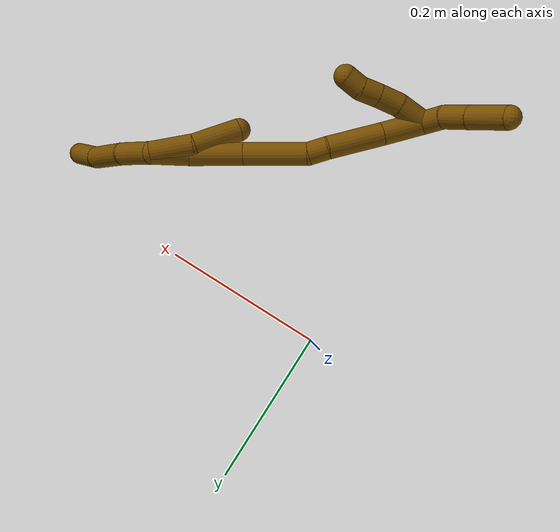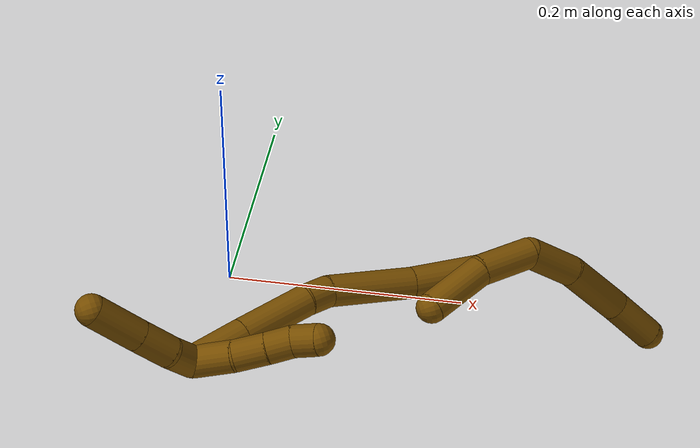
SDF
<sdf version="1.7">
 <world name="default">
  <model name="12">
   <static>0</static>
   <link name="12">
    <collision name="collision-cylinder-e_1_2_8">
     <pose>0.007595 0.014216 -0.015926 -2.41288 0.341819 -0.849938</pose>
     <geometry><cylinder><radius>0.0125</radius><length>0.045317</length></cylinder></geometry>
     <surface>
      <friction><ode><mu>1.16</mu><mu2>1.16</mu2><slip1>0</slip1><slip2>0</slip2></ode></friction>
      <contact><ode><kp>1e+06</kp><kd>1</kd><max_vel>0</max_vel><min_depth>0.001</min_depth></ode></contact>
     </surface>
    </collision>
    <visual name="visual-cylinder-e_1_2_8">
     <pose>0.007595 0.014216 -0.015926 -2.41288 0.341819 -0.849938</pose>
     <geometry><cylinder><radius>0.0125</radius><length>0.045317</length></cylinder></geometry>
     <material><ambient>0.466667 0.301961 0 1</ambient></material>
    </visual>
    <collision name="collision-cylinder-e_2_8_9">
     <pose>0.0277 0.051059 -0.048284 -2.19888 0.420626 -0.793279</pose>
     <geometry><cylinder><radius>0.0125</radius><length>0.06127</length></cylinder></geometry>
     <surface>
      <friction><ode><mu>1.16</mu><mu2>1.16</mu2><slip1>0</slip1><slip2>0</slip2></ode></friction>
      <contact><ode><kp>1e+06</kp><kd>1</kd><max_vel>0</max_vel><min_depth>0.001</min_depth></ode></contact>
     </surface>
    </collision>
    <visual name="visual-cylinder-e_2_8_9">
     <pose>0.0277 0.051059 -0.048284 -2.19888 0.420626 -0.793279</pose>
     <geometry><cylinder><radius>0.0125</radius><length>0.06127</length></cylinder></geometry>
     <material><ambient>0.466667 0.301961 0 1</ambient></material>
    </visual>
    <collision name="collision-cylinder-e_3_9_6">
     <pose>0.045563 0.09111 -0.076503 -2.1656 0.249251 -0.463524</pose>
     <geometry><cylinder><radius>0.0125</radius><length>0.043413</length></cylinder></geometry>
     <surface>
      <friction><ode><mu>1.16</mu><mu2>1.16</mu2><slip1>0</slip1><slip2>0</slip2></ode></friction>
      <contact><ode><kp>1e+06</kp><kd>1</kd><max_vel>0</max_vel><min_depth>0.001</min_depth></ode></contact>
     </surface>
    </collision>
    <visual name="visual-cylinder-e_3_9_6">
     <pose>0.045563 0.09111 -0.076503 -2.1656 0.249251 -0.463524</pose>
     <geometry><cylinder><radius>0.0125</radius><length>0.043413</length></cylinder></geometry>
     <material><ambient>0.466667 0.301961 0 1</ambient></material>
    </visual>
    <collision name="collision-cylinder-e_1_2_10">
     <pose>-0.007323 -0.001061 0.02263 0.046859 -0.312647 -0.007387</pose>
     <geometry><cylinder><radius>0.0125</radius><length>0.047618</length></cylinder></geometry>
     <surface>
      <friction><ode><mu>1.16</mu><mu2>1.16</mu2><slip1>0</slip1><slip2>0</slip2></ode></friction>
      <contact><ode><kp>1e+06</kp><kd>1</kd><max_vel>0</max_vel><min_depth>0.001</min_depth></ode></contact>
     </surface>
    </collision>
    <visual name="visual-cylinder-e_1_2_10">
     <pose>-0.007323 -0.001061 0.02263 0.046859 -0.312647 -0.007387</pose>
     <geometry><cylinder><radius>0.0125</radius><length>0.047618</length></cylinder></geometry>
     <material><ambient>0.466667 0.301961 0 1</ambient></material>
    </visual>
    <collision name="collision-cylinder-e_2_10_5">
     <pose>-0.023955 0.00364 0.069053 -0.237629 -0.363374 0.043855</pose>
     <geometry><cylinder><radius>0.0125</radius><length>0.052382</length></cylinder></geometry>
     <surface>
      <friction><ode><mu>1.16</mu><mu2>1.16</mu2><slip1>0</slip1><slip2>0</slip2></ode></friction>
      <contact><ode><kp>1e+06</kp><kd>1</kd><max_vel>0</max_vel><min_depth>0.001</min_depth></ode></contact>
     </surface>
    </collision>
    <visual name="visual-cylinder-e_2_10_5">
     <pose>-0.023955 0.00364 0.069053 -0.237629 -0.363374 0.043855</pose>
     <geometry><cylinder><radius>0.0125</radius><length>0.052382</length></cylinder></geometry>
     <material><ambient>0.466667 0.301961 0 1</ambient></material>
    </visual>
    <collision name="collision-cylinder-e_1_2_11">
     <pose>-0.001391 0.000227 0.020951 -0.010853 -0.066314 0.00036</pose>
     <geometry><cylinder><radius>0.0125</radius><length>0.041997</length></cylinder></geometry>
     <surface>
      <friction><ode><mu>1.16</mu><mu2>1.16</mu2><slip1>0</slip1><slip2>0</slip2></ode></friction>
      <contact><ode><kp>1e+06</kp><kd>1</kd><max_vel>0</max_vel><min_depth>0.001</min_depth></ode></contact>
     </surface>
    </collision>
    <visual name="visual-cylinder-e_1_2_11">
     <pose>-0.001391 0.000227 0.020951 -0.010853 -0.066314 0.00036</pose>
     <geometry><cylinder><radius>0.0125</radius><length>0.041997</length></cylinder></geometry>
     <material><ambient>0.466667 0.301961 0 1</ambient></material>
    </visual>
    <collision name="collision-cylinder-e_2_11_12">
     <pose>-0.008106 -0.004585 0.070917 0.171981 -0.178821 -0.015456</pose>
     <geometry><cylinder><radius>0.0125</radius><length>0.059854</length></cylinder></geometry>
     <surface>
      <friction><ode><mu>1.16</mu><mu2>1.16</mu2><slip1>0</slip1><slip2>0</slip2></ode></friction>
      <contact><ode><kp>1e+06</kp><kd>1</kd><max_vel>0</max_vel><min_depth>0.001</min_depth></ode></contact>
     </surface>
    </collision>
    <visual name="visual-cylinder-e_2_11_12">
     <pose>-0.008106 -0.004585 0.070917 0.171981 -0.178821 -0.015456</pose>
     <geometry><cylinder><radius>0.0125</radius><length>0.059854</length></cylinder></geometry>
     <material><ambient>0.466667 0.301961 0 1</ambient></material>
    </visual>
    <collision name="collision-cylinder-e_3_12_13">
     <pose>-0.020459 -0.018389 0.133246 0.257253 -0.201316 -0.026125</pose>
     <geometry><cylinder><radius>0.0125</radius><length>0.070315</length></cylinder></geometry>
     <surface>
      <friction><ode><mu>1.16</mu><mu2>1.16</mu2><slip1>0</slip1><slip2>0</slip2></ode></friction>
      <contact><ode><kp>1e+06</kp><kd>1</kd><max_vel>0</max_vel><min_depth>0.001</min_depth></ode></contact>
     </surface>
    </collision>
    <visual name="visual-cylinder-e_3_12_13">
     <pose>-0.020459 -0.018389 0.133246 0.257253 -0.201316 -0.026125</pose>
     <geometry><cylinder><radius>0.0125</radius><length>0.070315</length></cylinder></geometry>
     <material><ambient>0.466667 0.301961 0 1</ambient></material>
    </visual>
    <collision name="collision-cylinder-e_4_13_14">
     <pose>-0.032114 -0.027511 0.17625 0.036924 -0.445068 -0.008356</pose>
     <geometry><cylinder><radius>0.0125</radius><length>0.021487</length></cylinder></geometry>
     <surface>
      <friction><ode><mu>1.16</mu><mu2>1.16</mu2><slip1>0</slip1><slip2>0</slip2></ode></friction>
      <contact><ode><kp>1e+06</kp><kd>1</kd><max_vel>0</max_vel><min_depth>0.001</min_depth></ode></contact>
     </surface>
    </collision>
    <visual name="visual-cylinder-e_4_13_14">
     <pose>-0.032114 -0.027511 0.17625 0.036924 -0.445068 -0.008356</pose>
     <geometry><cylinder><radius>0.0125</radius><length>0.021487</length></cylinder></geometry>
     <material><ambient>0.466667 0.301961 0 1</ambient></material>
    </visual>
    <collision name="collision-cylinder-e_5_14_15">
     <pose>-0.046687 -0.025287 0.214183 -0.091194 -0.337331 0.015539</pose>
     <geometry><cylinder><radius>0.0125</radius><length>0.06011</length></cylinder></geometry>
     <surface>
      <friction><ode><mu>1.16</mu><mu2>1.16</mu2><slip1>0</slip1><slip2>0</slip2></ode></friction>
      <contact><ode><kp>1e+06</kp><kd>1</kd><max_vel>0</max_vel><min_depth>0.001</min_depth></ode></contact>
     </surface>
    </collision>
    <visual name="visual-cylinder-e_5_14_15">
     <pose>-0.046687 -0.025287 0.214183 -0.091194 -0.337331 0.015539</pose>
     <geometry><cylinder><radius>0.0125</radius><length>0.06011</length></cylinder></geometry>
     <material><ambient>0.466667 0.301961 0 1</ambient></material>
    </visual>
    <collision name="collision-cylinder-e_6_15_1">
     <pose>-0.064513 -0.020357 0.264034 -0.1082 -0.347759 0.019024</pose>
     <geometry><cylinder><radius>0.0125</radius><length>0.046239</length></cylinder></geometry>
     <surface>
      <friction><ode><mu>1.16</mu><mu2>1.16</mu2><slip1>0</slip1><slip2>0</slip2></ode></friction>
      <contact><ode><kp>1e+06</kp><kd>1</kd><max_vel>0</max_vel><min_depth>0.001</min_depth></ode></contact>
     </surface>
    </collision>
    <visual name="visual-cylinder-e_6_15_1">
     <pose>-0.064513 -0.020357 0.264034 -0.1082 -0.347759 0.019024</pose>
     <geometry><cylinder><radius>0.0125</radius><length>0.046239</length></cylinder></geometry>
     <material><ambient>0.466667 0.301961 0 1</ambient></material>
    </visual>
    <collision name="collision-cylinder-e_1_1_16">
     <pose>-0.080105 -0.01702 0.270617 -3.07585 -0.473398 2.87064</pose>
     <geometry><cylinder><radius>0.0125</radius><length>0.033837</length></cylinder></geometry>
     <surface>
      <friction><ode><mu>1.16</mu><mu2>1.16</mu2><slip1>0</slip1><slip2>0</slip2></ode></friction>
      <contact><ode><kp>1e+06</kp><kd>1</kd><max_vel>0</max_vel><min_depth>0.001</min_depth></ode></contact>
     </surface>
    </collision>
    <visual name="visual-cylinder-e_1_1_16">
     <pose>-0.080105 -0.01702 0.270617 -3.07585 -0.473398 2.87064</pose>
     <geometry><cylinder><radius>0.0125</radius><length>0.033837</length></cylinder></geometry>
     <material><ambient>0.466667 0.301961 0 1</ambient></material>
    </visual>
    <collision name="collision-cylinder-e_2_16_17">
     <pose>-0.091488 -0.015808 0.243314 -3.12345 -0.290391 3.01768</pose>
     <geometry><cylinder><radius>0.0125</radius><length>0.025634</length></cylinder></geometry>
     <surface>
      <friction><ode><mu>1.16</mu><mu2>1.16</mu2><slip1>0</slip1><slip2>0</slip2></ode></friction>
      <contact><ode><kp>1e+06</kp><kd>1</kd><max_vel>0</max_vel><min_depth>0.001</min_depth></ode></contact>
     </surface>
    </collision>
    <visual name="visual-cylinder-e_2_16_17">
     <pose>-0.091488 -0.015808 0.243314 -3.12345 -0.290391 3.01768</pose>
     <geometry><cylinder><radius>0.0125</radius><length>0.025634</length></cylinder></geometry>
     <material><ambient>0.466667 0.301961 0 1</ambient></material>
    </visual>
    <collision name="collision-cylinder-e_3_17_18">
     <pose>-0.097698 -0.015685 0.221103 3.13159 -0.25034 -3.06211</pose>
     <geometry><cylinder><radius>0.0125</radius><length>0.020506</length></cylinder></geometry>
     <surface>
      <friction><ode><mu>1.16</mu><mu2>1.16</mu2><slip1>0</slip1><slip2>0</slip2></ode></friction>
      <contact><ode><kp>1e+06</kp><kd>1</kd><max_vel>0</max_vel><min_depth>0.001</min_depth></ode></contact>
     </surface>
    </collision>
    <visual name="visual-cylinder-e_3_17_18">
     <pose>-0.097698 -0.015685 0.221103 3.13159 -0.25034 -3.06211</pose>
     <geometry><cylinder><radius>0.0125</radius><length>0.020506</length></cylinder></geometry>
     <material><ambient>0.466667 0.301961 0 1</ambient></material>
    </visual>
    <collision name="collision-cylinder-e_4_18_4">
     <pose>-0.105198 -0.014569 0.202559 -3.00141 -0.518357 2.6239</pose>
     <geometry><cylinder><radius>0.0125</radius><length>0.020024</length></cylinder></geometry>
     <surface>
      <friction><ode><mu>1.16</mu><mu2>1.16</mu2><slip1>0</slip1><slip2>0</slip2></ode></friction>
      <contact><ode><kp>1e+06</kp><kd>1</kd><max_vel>0</max_vel><min_depth>0.001</min_depth></ode></contact>
     </surface>
    </collision>
    <visual name="visual-cylinder-e_4_18_4">
     <pose>-0.105198 -0.014569 0.202559 -3.00141 -0.518357 2.6239</pose>
     <geometry><cylinder><radius>0.0125</radius><length>0.020024</length></cylinder></geometry>
     <material><ambient>0.466667 0.301961 0 1</ambient></material>
    </visual>
    <collision name="collision-cylinder-e_1_1_19">
     <pose>-0.079006 -0.025829 0.293253 0.798955 -0.544956 -0.234851</pose>
     <geometry><cylinder><radius>0.0125</radius><length>0.025519</length></cylinder></geometry>
     <surface>
      <friction><ode><mu>1.16</mu><mu2>1.16</mu2><slip1>0</slip1><slip2>0</slip2></ode></friction>
      <contact><ode><kp>1e+06</kp><kd>1</kd><max_vel>0</max_vel><min_depth>0.001</min_depth></ode></contact>
     </surface>
    </collision>
    <visual name="visual-cylinder-e_1_1_19">
     <pose>-0.079006 -0.025829 0.293253 0.798955 -0.544956 -0.234851</pose>
     <geometry><cylinder><radius>0.0125</radius><length>0.025519</length></cylinder></geometry>
     <material><ambient>0.466667 0.301961 0 1</ambient></material>
    </visual>
    <collision name="collision-cylinder-e_2_19_20">
     <pose>-0.090016 -0.044464 0.310629 0.836343 -0.292937 -0.130927</pose>
     <geometry><cylinder><radius>0.0125</radius><length>0.030442</length></cylinder></geometry>
     <surface>
      <friction><ode><mu>1.16</mu><mu2>1.16</mu2><slip1>0</slip1><slip2>0</slip2></ode></friction>
      <contact><ode><kp>1e+06</kp><kd>1</kd><max_vel>0</max_vel><min_depth>0.001</min_depth></ode></contact>
     </surface>
    </collision>
    <visual name="visual-cylinder-e_2_19_20">
     <pose>-0.090016 -0.044464 0.310629 0.836343 -0.292937 -0.130927</pose>
     <geometry><cylinder><radius>0.0125</radius><length>0.030442</length></cylinder></geometry>
     <material><ambient>0.466667 0.301961 0 1</ambient></material>
    </visual>
    <collision name="collision-cylinder-e_3_20_3">
     <pose>-0.101013 -0.071102 0.334213 0.852961 -0.304514 -0.139215</pose>
     <geometry><cylinder><radius>0.0125</radius><length>0.044039</length></cylinder></geometry>
     <surface>
      <friction><ode><mu>1.16</mu><mu2>1.16</mu2><slip1>0</slip1><slip2>0</slip2></ode></friction>
      <contact><ode><kp>1e+06</kp><kd>1</kd><max_vel>0</max_vel><min_depth>0.001</min_depth></ode></contact>
     </surface>
    </collision>
    <visual name="visual-cylinder-e_3_20_3">
     <pose>-0.101013 -0.071102 0.334213 0.852961 -0.304514 -0.139215</pose>
     <geometry><cylinder><radius>0.0125</radius><length>0.044039</length></cylinder></geometry>
     <material><ambient>0.466667 0.301961 0 1</ambient></material>
    </visual>
    <collision name="collision-sphere-3">
     <pose>-0.107615 -0.086925 0.34803 0 -0 0</pose>
     <geometry><sphere><radius>0.0125</radius></sphere></geometry>
     <surface>
      <friction><ode><mu>1.16</mu><mu2>1.16</mu2><slip1>0</slip1><slip2>0</slip2></ode></friction>
      <contact><ode><kp>1e+06</kp><kd>1</kd><max_vel>0</max_vel><min_depth>0.001</min_depth></ode></contact>
     </surface>
    </collision>
    <visual name="visual-sphere-3">
     <pose>-0.107615 -0.086925 0.34803 0 -0 0</pose>
     <geometry><sphere><radius>0.0125</radius></sphere></geometry>
     <material><ambient>0.466667 0.301961 0 1</ambient></material>
    </visual>
    <collision name="collision-sphere-20">
     <pose>-0.094411 -0.055279 0.320395 0 -0 0</pose>
     <geometry><sphere><radius>0.0125</radius></sphere></geometry>
     <surface>
      <friction><ode><mu>1.16</mu><mu2>1.16</mu2><slip1>0</slip1><slip2>0</slip2></ode></friction>
      <contact><ode><kp>1e+06</kp><kd>1</kd><max_vel>0</max_vel><min_depth>0.001</min_depth></ode></contact>
     </surface>
    </collision>
    <visual name="visual-sphere-20">
     <pose>-0.094411 -0.055279 0.320395 0 -0 0</pose>
     <geometry><sphere><radius>0.0125</radius></sphere></geometry>
     <material><ambient>0.466667 0.301961 0 1</ambient></material>
    </visual>
    <collision name="collision-sphere-19">
     <pose>-0.08562 -0.033648 0.300863 0 -0 0</pose>
     <geometry><sphere><radius>0.0125</radius></sphere></geometry>
     <surface>
      <friction><ode><mu>1.16</mu><mu2>1.16</mu2><slip1>0</slip1><slip2>0</slip2></ode></friction>
      <contact><ode><kp>1e+06</kp><kd>1</kd><max_vel>0</max_vel><min_depth>0.001</min_depth></ode></contact>
     </surface>
    </collision>
    <visual name="visual-sphere-19">
     <pose>-0.08562 -0.033648 0.300863 0 -0 0</pose>
     <geometry><sphere><radius>0.0125</radius></sphere></geometry>
     <material><ambient>0.466667 0.301961 0 1</ambient></material>
    </visual>
    <collision name="collision-sphere-5">
     <pose>-0.033264 0.009403 0.092846 0 -0 0</pose>
     <geometry><sphere><radius>0.0125</radius></sphere></geometry>
     <surface>
      <friction><ode><mu>1.16</mu><mu2>1.16</mu2><slip1>0</slip1><slip2>0</slip2></ode></friction>
      <contact><ode><kp>1e+06</kp><kd>1</kd><max_vel>0</max_vel><min_depth>0.001</min_depth></ode></contact>
     </surface>
    </collision>
    <visual name="visual-sphere-5">
     <pose>-0.033264 0.009403 0.092846 0 -0 0</pose>
     <geometry><sphere><radius>0.0125</radius></sphere></geometry>
     <material><ambient>0.466667 0.301961 0 1</ambient></material>
    </visual>
    <collision name="collision-sphere-10">
     <pose>-0.014646 -0.002122 0.04526 0 -0 0</pose>
     <geometry><sphere><radius>0.0125</radius></sphere></geometry>
     <surface>
      <friction><ode><mu>1.16</mu><mu2>1.16</mu2><slip1>0</slip1><slip2>0</slip2></ode></friction>
      <contact><ode><kp>1e+06</kp><kd>1</kd><max_vel>0</max_vel><min_depth>0.001</min_depth></ode></contact>
     </surface>
    </collision>
    <visual name="visual-sphere-10">
     <pose>-0.014646 -0.002122 0.04526 0 -0 0</pose>
     <geometry><sphere><radius>0.0125</radius></sphere></geometry>
     <material><ambient>0.466667 0.301961 0 1</ambient></material>
    </visual>
    <collision name="collision-sphere-6">
     <pose>0.050918 0.108533 -0.08829 0 -0 0</pose>
     <geometry><sphere><radius>0.0125</radius></sphere></geometry>
     <surface>
      <friction><ode><mu>1.16</mu><mu2>1.16</mu2><slip1>0</slip1><slip2>0</slip2></ode></friction>
      <contact><ode><kp>1e+06</kp><kd>1</kd><max_vel>0</max_vel><min_depth>0.001</min_depth></ode></contact>
     </surface>
    </collision>
    <visual name="visual-sphere-6">
     <pose>0.050918 0.108533 -0.08829 0 -0 0</pose>
     <geometry><sphere><radius>0.0125</radius></sphere></geometry>
     <material><ambient>0.466667 0.301961 0 1</ambient></material>
    </visual>
    <collision name="collision-sphere-9">
     <pose>0.040209 0.073687 -0.064716 0 -0 0</pose>
     <geometry><sphere><radius>0.0125</radius></sphere></geometry>
     <surface>
      <friction><ode><mu>1.16</mu><mu2>1.16</mu2><slip1>0</slip1><slip2>0</slip2></ode></friction>
      <contact><ode><kp>1e+06</kp><kd>1</kd><max_vel>0</max_vel><min_depth>0.001</min_depth></ode></contact>
     </surface>
    </collision>
    <visual name="visual-sphere-9">
     <pose>0.040209 0.073687 -0.064716 0 -0 0</pose>
     <geometry><sphere><radius>0.0125</radius></sphere></geometry>
     <material><ambient>0.466667 0.301961 0 1</ambient></material>
    </visual>
    <collision name="collision-sphere-2">
     <geometry><sphere><radius>0.0125</radius></sphere></geometry>
     <surface>
      <friction><ode><mu>1.16</mu><mu2>1.16</mu2><slip1>0</slip1><slip2>0</slip2></ode></friction>
      <contact><ode><kp>1e+06</kp><kd>1</kd><max_vel>0</max_vel><min_depth>0.001</min_depth></ode></contact>
     </surface>
    </collision>
    <visual name="visual-sphere-2">
     <geometry><sphere><radius>0.0125</radius></sphere></geometry>
     <material><ambient>0.466667 0.301961 0 1</ambient></material>
    </visual>
    <collision name="collision-sphere-8">
     <pose>0.01519 0.028431 -0.031852 0 -0 0</pose>
     <geometry><sphere><radius>0.0125</radius></sphere></geometry>
     <surface>
      <friction><ode><mu>1.16</mu><mu2>1.16</mu2><slip1>0</slip1><slip2>0</slip2></ode></friction>
      <contact><ode><kp>1e+06</kp><kd>1</kd><max_vel>0</max_vel><min_depth>0.001</min_depth></ode></contact>
     </surface>
    </collision>
    <visual name="visual-sphere-8">
     <pose>0.01519 0.028431 -0.031852 0 -0 0</pose>
     <geometry><sphere><radius>0.0125</radius></sphere></geometry>
     <material><ambient>0.466667 0.301961 0 1</ambient></material>
    </visual>
    <collision name="collision-sphere-11">
     <pose>-0.002783 0.000455 0.041902 0 -0 0</pose>
     <geometry><sphere><radius>0.0125</radius></sphere></geometry>
     <surface>
      <friction><ode><mu>1.16</mu><mu2>1.16</mu2><slip1>0</slip1><slip2>0</slip2></ode></friction>
      <contact><ode><kp>1e+06</kp><kd>1</kd><max_vel>0</max_vel><min_depth>0.001</min_depth></ode></contact>
     </surface>
    </collision>
    <visual name="visual-sphere-11">
     <pose>-0.002783 0.000455 0.041902 0 -0 0</pose>
     <geometry><sphere><radius>0.0125</radius></sphere></geometry>
     <material><ambient>0.466667 0.301961 0 1</ambient></material>
    </visual>
    <collision name="collision-sphere-12">
     <pose>-0.013429 -0.009625 0.099932 0 -0 0</pose>
     <geometry><sphere><radius>0.0125</radius></sphere></geometry>
     <surface>
      <friction><ode><mu>1.16</mu><mu2>1.16</mu2><slip1>0</slip1><slip2>0</slip2></ode></friction>
      <contact><ode><kp>1e+06</kp><kd>1</kd><max_vel>0</max_vel><min_depth>0.001</min_depth></ode></contact>
     </surface>
    </collision>
    <visual name="visual-sphere-12">
     <pose>-0.013429 -0.009625 0.099932 0 -0 0</pose>
     <geometry><sphere><radius>0.0125</radius></sphere></geometry>
     <material><ambient>0.466667 0.301961 0 1</ambient></material>
    </visual>
    <collision name="collision-sphere-13">
     <pose>-0.027489 -0.027153 0.16656 0 -0 0</pose>
     <geometry><sphere><radius>0.0125</radius></sphere></geometry>
     <surface>
      <friction><ode><mu>1.16</mu><mu2>1.16</mu2><slip1>0</slip1><slip2>0</slip2></ode></friction>
      <contact><ode><kp>1e+06</kp><kd>1</kd><max_vel>0</max_vel><min_depth>0.001</min_depth></ode></contact>
     </surface>
    </collision>
    <visual name="visual-sphere-13">
     <pose>-0.027489 -0.027153 0.16656 0 -0 0</pose>
     <geometry><sphere><radius>0.0125</radius></sphere></geometry>
     <material><ambient>0.466667 0.301961 0 1</ambient></material>
    </visual>
    <collision name="collision-sphere-14">
     <pose>-0.03674 -0.027869 0.18594 0 -0 0</pose>
     <geometry><sphere><radius>0.0125</radius></sphere></geometry>
     <surface>
      <friction><ode><mu>1.16</mu><mu2>1.16</mu2><slip1>0</slip1><slip2>0</slip2></ode></friction>
      <contact><ode><kp>1e+06</kp><kd>1</kd><max_vel>0</max_vel><min_depth>0.001</min_depth></ode></contact>
     </surface>
    </collision>
    <visual name="visual-sphere-14">
     <pose>-0.03674 -0.027869 0.18594 0 -0 0</pose>
     <geometry><sphere><radius>0.0125</radius></sphere></geometry>
     <material><ambient>0.466667 0.301961 0 1</ambient></material>
    </visual>
    <collision name="collision-sphere-15">
     <pose>-0.056634 -0.022704 0.242426 0 -0 0</pose>
     <geometry><sphere><radius>0.0125</radius></sphere></geometry>
     <surface>
      <friction><ode><mu>1.16</mu><mu2>1.16</mu2><slip1>0</slip1><slip2>0</slip2></ode></friction>
      <contact><ode><kp>1e+06</kp><kd>1</kd><max_vel>0</max_vel><min_depth>0.001</min_depth></ode></contact>
     </surface>
    </collision>
    <visual name="visual-sphere-15">
     <pose>-0.056634 -0.022704 0.242426 0 -0 0</pose>
     <geometry><sphere><radius>0.0125</radius></sphere></geometry>
     <material><ambient>0.466667 0.301961 0 1</ambient></material>
    </visual>
    <collision name="collision-sphere-1">
     <pose>-0.072392 -0.018009 0.285643 0 -0 0</pose>
     <geometry><sphere><radius>0.0125</radius></sphere></geometry>
     <surface>
      <friction><ode><mu>1.16</mu><mu2>1.16</mu2><slip1>0</slip1><slip2>0</slip2></ode></friction>
      <contact><ode><kp>1e+06</kp><kd>1</kd><max_vel>0</max_vel><min_depth>0.001</min_depth></ode></contact>
     </surface>
    </collision>
    <visual name="visual-sphere-1">
     <pose>-0.072392 -0.018009 0.285643 0 -0 0</pose>
     <geometry><sphere><radius>0.0125</radius></sphere></geometry>
     <material><ambient>0.466667 0.301961 0 1</ambient></material>
    </visual>
    <collision name="collision-sphere-18">
     <pose>-0.100238 -0.015784 0.21117 0 -0 0</pose>
     <geometry><sphere><radius>0.0125</radius></sphere></geometry>
     <surface>
      <friction><ode><mu>1.16</mu><mu2>1.16</mu2><slip1>0</slip1><slip2>0</slip2></ode></friction>
      <contact><ode><kp>1e+06</kp><kd>1</kd><max_vel>0</max_vel><min_depth>0.001</min_depth></ode></contact>
     </surface>
    </collision>
    <visual name="visual-sphere-18">
     <pose>-0.100238 -0.015784 0.21117 0 -0 0</pose>
     <geometry><sphere><radius>0.0125</radius></sphere></geometry>
     <material><ambient>0.466667 0.301961 0 1</ambient></material>
    </visual>
    <collision name="collision-sphere-16">
     <pose>-0.087818 -0.016031 0.255592 0 -0 0</pose>
     <geometry><sphere><radius>0.0125</radius></sphere></geometry>
     <surface>
      <friction><ode><mu>1.16</mu><mu2>1.16</mu2><slip1>0</slip1><slip2>0</slip2></ode></friction>
      <contact><ode><kp>1e+06</kp><kd>1</kd><max_vel>0</max_vel><min_depth>0.001</min_depth></ode></contact>
     </surface>
    </collision>
    <visual name="visual-sphere-16">
     <pose>-0.087818 -0.016031 0.255592 0 -0 0</pose>
     <geometry><sphere><radius>0.0125</radius></sphere></geometry>
     <material><ambient>0.466667 0.301961 0 1</ambient></material>
    </visual>
    <collision name="collision-sphere-17">
     <pose>-0.095158 -0.015586 0.231036 0 -0 0</pose>
     <geometry><sphere><radius>0.0125</radius></sphere></geometry>
     <surface>
      <friction><ode><mu>1.16</mu><mu2>1.16</mu2><slip1>0</slip1><slip2>0</slip2></ode></friction>
      <contact><ode><kp>1e+06</kp><kd>1</kd><max_vel>0</max_vel><min_depth>0.001</min_depth></ode></contact>
     </surface>
    </collision>
    <visual name="visual-sphere-17">
     <pose>-0.095158 -0.015586 0.231036 0 -0 0</pose>
     <geometry><sphere><radius>0.0125</radius></sphere></geometry>
     <material><ambient>0.466667 0.301961 0 1</ambient></material>
    </visual>
    <collision name="collision-sphere-4">
     <pose>-0.110159 -0.013354 0.193948 0 -0 0</pose>
     <geometry><sphere><radius>0.0125</radius></sphere></geometry>
     <surface>
      <friction><ode><mu>1.16</mu><mu2>1.16</mu2><slip1>0</slip1><slip2>0</slip2></ode></friction>
      <contact><ode><kp>1e+06</kp><kd>1</kd><max_vel>0</max_vel><min_depth>0.001</min_depth></ode></contact>
     </surface>
    </collision>
    <visual name="visual-sphere-4">
     <pose>-0.110159 -0.013354 0.193948 0 -0 0</pose>
     <geometry><sphere><radius>0.0125</radius></sphere></geometry>
     <material><ambient>0.466667 0.301961 0 1</ambient></material>
    </visual>
    <inertial>
     <pose>-0.032555 -0.004641 0.128932 0 -0 0</pose>
     <mass>0.75</mass>
     <inertia><ixx>0.00011</ixx><ixy>0</ixy><ixz>0</ixz><iyy>0.000102</iyy><iyz>0</iyz><izz>3.2e-05</izz></inertia>
    </inertial>
   </link>
   <pose>0.264237 -0.081301 0.132928 -1.72676 0.522585 1.97583</pose>
  </model>
 </world>
</sdf>
